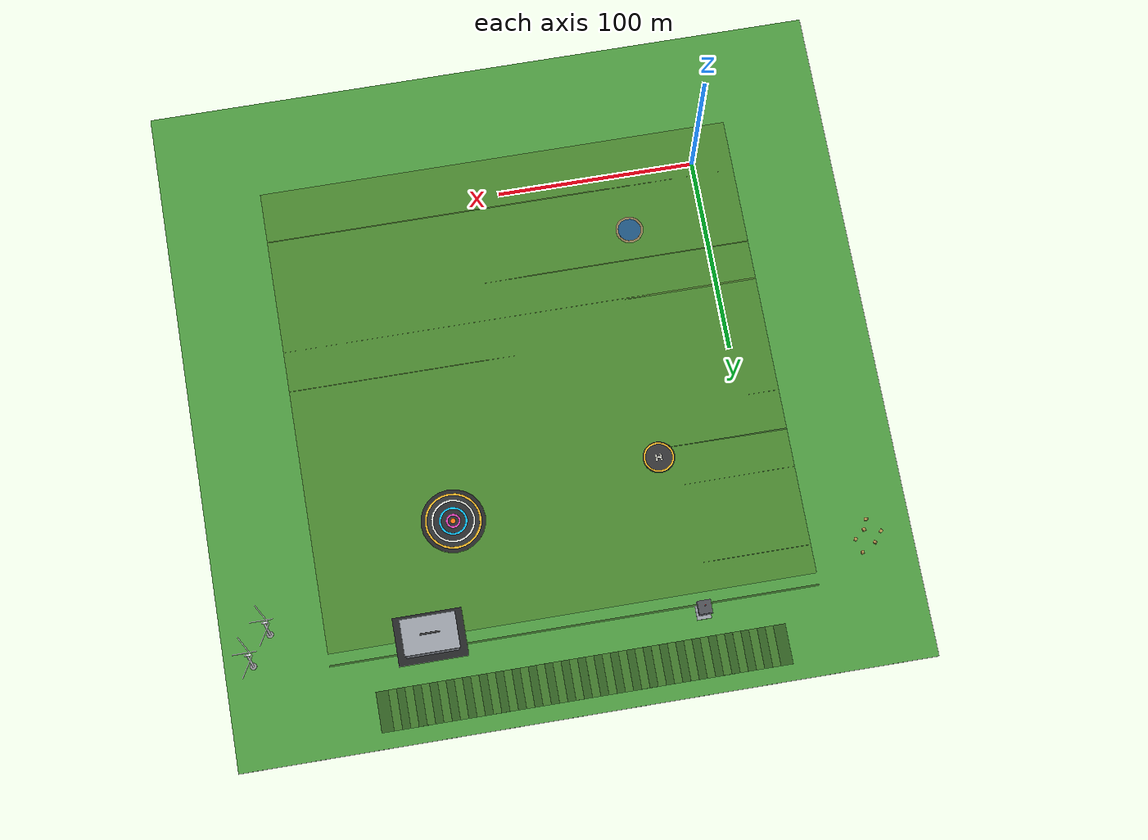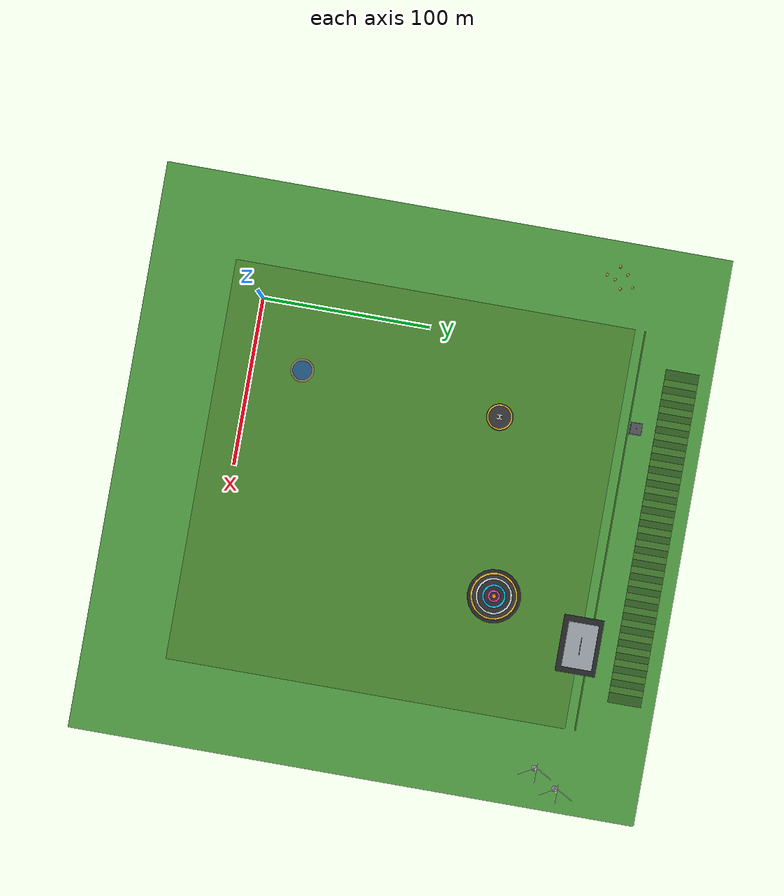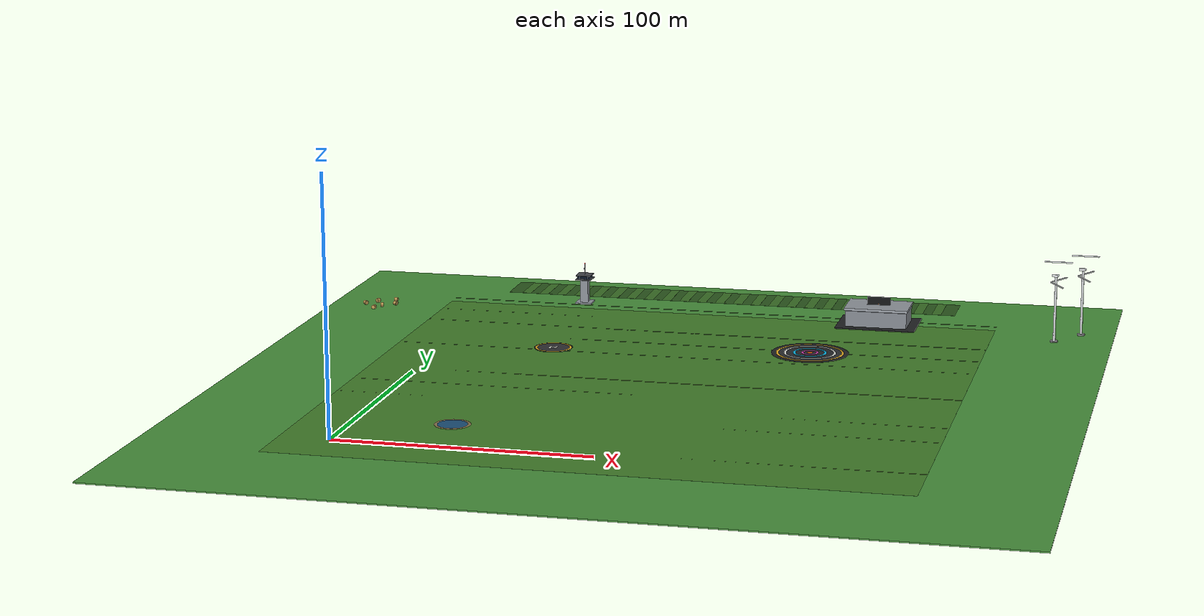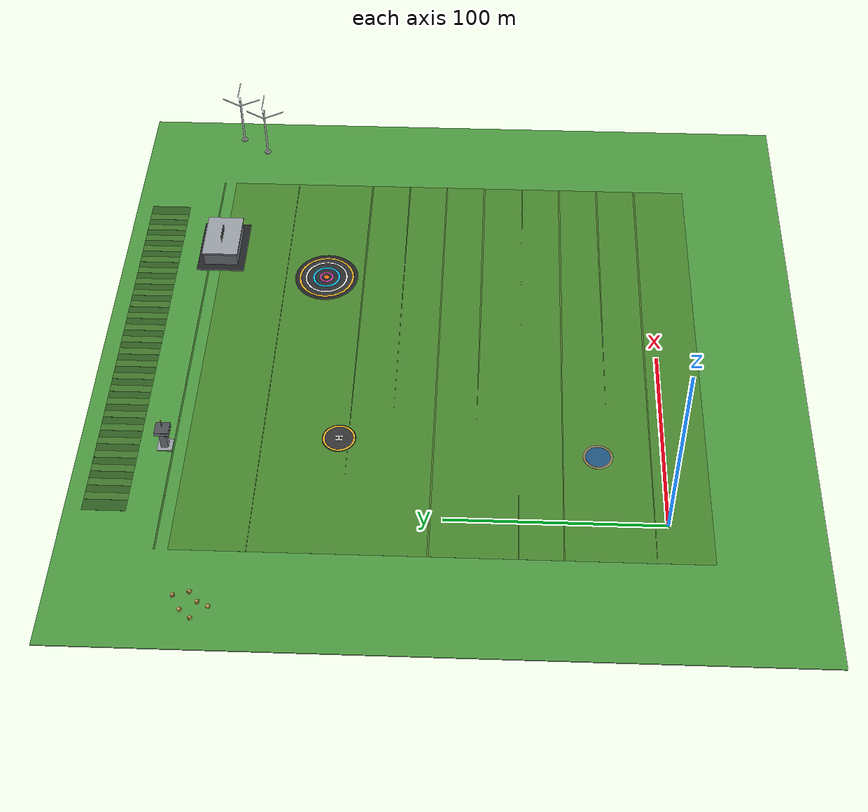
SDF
<sdf version="1.7">
 <world name="hiveflight_world">
  <include><uri>model://sun</uri><pose>80 120 180 0.35 -0.28 2.4</pose></include>
  <model name="terrain_grass">
   <static>true</static>
   <pose>100 100 -0.25 0 0 0</pose>
   <link name="ground">
    <collision name="collision"><geometry><box><size>340 340 0.5</size></box></geometry></collision>
    <visual name="visual">
     <geometry><box><size>340 340 0.5</size></box></geometry>
     <material>
      <script><uri>file://media/materials/scripts/gazebo.material</uri><name>Gazebo/Grass</name></script>
     </material>
    </visual>
   </link>
  </model>
  <model name="inner_lawn">
   <static>true</static>
   <pose>100 100 0.02 0 0 0</pose>
   <link name="lawn">
    <visual name="visual">
     <geometry><box><size>240 240 0.02</size></box></geometry>
     <material>
      <ambient>0.25 0.44 0.16 1</ambient>
      <diffuse>0.28 0.52 0.18 1</diffuse>
      <specular>0.03 0.03 0.03 1</specular>
     </material>
    </visual>
   </link>
  </model>
  <model name="lawn_stripes">
   <static>true</static>
   <pose>100 100 0.025 0 0 0</pose>
   <link name="stripes">
    <visual name="band_01">
     <pose>0 26 0 0 0 0</pose>
     <geometry><box><size>240 0.8 0.01</size></box></geometry>
     <material><diffuse>0.22 0.40 0.15 1</diffuse></material>
    </visual>
    <visual name="band_02">
     <pose>0 46 0 0 0 0</pose>
     <geometry><box><size>240 0.8 0.01</size></box></geometry>
     <material><diffuse>0.22 0.40 0.15 1</diffuse></material>
    </visual>
    <visual name="band_03">
     <pose>0 66 0 0 0 0</pose>
     <geometry><box><size>240 0.8 0.01</size></box></geometry>
     <material><diffuse>0.22 0.40 0.15 1</diffuse></material>
    </visual>
    <visual name="band_04">
     <pose>0 86 0 0 0 0</pose>
     <geometry><box><size>240 0.8 0.01</size></box></geometry>
     <material><diffuse>0.22 0.40 0.15 1</diffuse></material>
    </visual>
    <visual name="band_05">
     <pose>0 106 0 0 0 0</pose>
     <geometry><box><size>240 0.8 0.01</size></box></geometry>
     <material><diffuse>0.22 0.40 0.15 1</diffuse></material>
    </visual>
    <visual name="band_06">
     <pose>0 126 0 0 0 0</pose>
     <geometry><box><size>240 0.8 0.01</size></box></geometry>
     <material><diffuse>0.22 0.40 0.15 1</diffuse></material>
    </visual>
    <visual name="band_07">
     <pose>0 6 0 0 0 0</pose>
     <geometry><box><size>240 0.8 0.01</size></box></geometry>
     <material><diffuse>0.30 0.48 0.17 1</diffuse></material>
    </visual>
    <visual name="band_08">
     <pose>0 -14 0 0 0 0</pose>
     <geometry><box><size>240 0.8 0.01</size></box></geometry>
     <material><diffuse>0.30 0.48 0.17 1</diffuse></material>
    </visual>
    <visual name="band_09">
     <pose>0 -34 0 0 0 0</pose>
     <geometry><box><size>240 0.8 0.01</size></box></geometry>
     <material><diffuse>0.30 0.48 0.17 1</diffuse></material>
    </visual>
    <visual name="band_10">
     <pose>0 -54 0 0 0 0</pose>
     <geometry><box><size>240 0.8 0.01</size></box></geometry>
     <material><diffuse>0.30 0.48 0.17 1</diffuse></material>
    </visual>
    <visual name="band_11">
     <pose>0 -74 0 0 0 0</pose>
     <geometry><box><size>240 0.8 0.01</size></box></geometry>
     <material><diffuse>0.30 0.48 0.17 1</diffuse></material>
    </visual>
    <visual name="band_12">
     <pose>0 -94 0 0 0 0</pose>
     <geometry><box><size>240 0.8 0.01</size></box></geometry>
     <material><diffuse>0.30 0.48 0.17 1</diffuse></material>
    </visual>
   </link>
  </model>
  <model name="field_pond">
   <static>true</static>
   <pose>38 30 0 0 0 0</pose>
   <link name="pond">
    <visual name="shore">
     <pose>0 0 0.035 0 0 0</pose>
     <geometry><cylinder><radius>7.0</radius><length>0.07</length></cylinder></geometry>
     <material><diffuse>0.55 0.48 0.32 1</diffuse></material>
    </visual>
    <visual name="water">
     <pose>0 0 0.075 0 0 0</pose>
     <geometry><cylinder><radius>5.8</radius><length>0.05</length></cylinder></geometry>
     <material>
      <ambient>0.1 0.25 0.4 1</ambient>
      <diffuse>0.12 0.33 0.5 1</diffuse>
      <emissive>0.06 0.18 0.3 1</emissive>
      <transparency>0.25</transparency>
     </material>
    </visual>
   </link>
  </model>
  <model name="helipad">
   <static>true</static>
   <pose>45 150 0 0 0 0</pose>
   <link name="pad">
    <visual name="pad_base">
     <pose>0 0 0.045 0 0 0</pose>
     <geometry><cylinder><radius>8.0</radius><length>0.09</length></cylinder></geometry>
     <material><ambient>0.1 0.1 0.11 1</ambient><diffuse>0.13 0.135 0.14 1</diffuse></material>
    </visual>
    <visual name="ring_yellow">
     <pose>0 0 0.10 0 0 0</pose>
     <geometry><cylinder><radius>7.6</radius><length>0.02</length></cylinder></geometry>
     <material><diffuse>0.95 0.72 0.15 1</diffuse></material>
    </visual>
    <visual name="ring_center">
     <pose>0 0 0.115 0 0 0</pose>
     <geometry><cylinder><radius>6.7</radius><length>0.02</length></cylinder></geometry>
     <material><diffuse>0.2 0.2 0.21 1</diffuse></material>
    </visual>
    <visual name="h_bar_fl">
     <pose>-1.1 0 0.13 0 0 0</pose>
     <geometry><box><size>0.8 3.4 0.02</size></box></geometry>
     <material><diffuse>0.95 0.95 0.9 1</diffuse></material>
    </visual>
    <visual name="h_bar_fr">
     <pose>1.1 0 0.13 0 0 0</pose>
     <geometry><box><size>0.8 3.4 0.02</size></box></geometry>
     <material><diffuse>0.95 0.95 0.9 1</diffuse></material>
    </visual>
    <visual name="h_cross">
     <pose>0 0 0.13 0 0 0</pose>
     <geometry><box><size>2.6 0.8 0.02</size></box></geometry>
     <material><diffuse>0.95 0.95 0.9 1</diffuse></material>
    </visual>
    <visual name="h_cross_alt">
     <pose>0 0 0.133 0 0 0</pose>
     <geometry><box><size>2.6 0.8 0.02</size></box></geometry>
     <material><diffuse>0.95 0.95 0.9 1</diffuse></material>
    </visual>
   </link>
  </model>
  <model name="swarm_ops_disc">
   <static>true</static>
   <pose>150 165 0 0 0 0</pose>
   <link name="ops">
    <visual name="ops_base">
     <pose>0 0 0.04 0 0 0</pose>
     <geometry><cylinder><radius>16</radius><length>0.08</length></cylinder></geometry>
     <material><ambient>0.1 0.1 0.11 1</ambient><diffuse>0.14 0.145 0.15 1</diffuse></material>
    </visual>
    <visual name="ring_o_yellow">
     <pose>0 0 0.085 0 0 0</pose>
     <geometry><cylinder><radius>14</radius><length>0.02</length></cylinder></geometry>
     <material><diffuse>0.95 0.72 0.15 1</diffuse></material>
    </visual>
    <visual name="ring_o_inner">
     <pose>0 0 0.10 0 0 0</pose>
     <geometry><cylinder><radius>13.0</radius><length>0.02</length></cylinder></geometry>
     <material><diffuse>0.18 0.19 0.2 1</diffuse></material>
    </visual>
    <visual name="ring_w_white">
     <pose>0 0 0.115 0 0 0</pose>
     <geometry><cylinder><radius>10.8</radius><length>0.02</length></cylinder></geometry>
     <material><diffuse>0.92 0.93 0.9 1</diffuse></material>
    </visual>
    <visual name="ring_w_inner">
     <pose>0 0 0.13 0 0 0</pose>
     <geometry><cylinder><radius>9.9</radius><length>0.02</length></cylinder></geometry>
     <material><diffuse>0.16 0.17 0.18 1</diffuse></material>
    </visual>
    <visual name="ring_c_cyan">
     <pose>0 0 0.145 0 0 0</pose>
     <geometry><cylinder><radius>7.0</radius><length>0.02</length></cylinder></geometry>
     <material><diffuse>0.05 0.75 0.95 1</diffuse></material>
    </visual>
    <visual name="ring_c_inner">
     <pose>0 0 0.16 0 0 0</pose>
     <geometry><cylinder><radius>6.0</radius><length>0.02</length></cylinder></geometry>
     <material><diffuse>0.15 0.16 0.17 1</diffuse></material>
    </visual>
    <visual name="core_magenta">
     <pose>0 0 0.175 0 0 0</pose>
     <geometry><cylinder><radius>3.6</radius><length>0.02</length></cylinder></geometry>
     <material><diffuse>0.85 0.25 0.7 1</diffuse></material>
    </visual>
    <visual name="core_inner">
     <pose>0 0 0.19 0 0 0</pose>
     <geometry><cylinder><radius>2.6</radius><length>0.02</length></cylinder></geometry>
     <material><diffuse>0.16 0.17 0.18 1</diffuse></material>
    </visual>
    <visual name="core_target">
     <pose>0 0 0.205 0 0 0</pose>
     <geometry><cylinder><radius>1.3</radius><length>0.03</length></cylinder></geometry>
     <material>
      <ambient>1 0.4 0.05 1</ambient>
      <diffuse>1 0.45 0.06 1</diffuse>
      <emissive>1 0.35 0.05 1</emissive>
      <lighting>false</lighting>
     </material>
    </visual>
   </link>
  </model>
  <model name="control_tower">
   <static>true</static>
   <pose>38 230 0 0 0 0</pose>
   <link name="tower">
    <visual name="base">
     <pose>0 0 0.3 0 0 0</pose>
     <geometry><box><size>7 7 0.6</size></box></geometry>
     <material><ambient>0.55 0.57 0.6 1</ambient><diffuse>0.6 0.62 0.65 1</diffuse></material>
    </visual>
    <visual name="shaft">
     <pose>0 0 5.5 0 0 0</pose>
     <geometry><box><size>3.4 3.4 10</size></box></geometry>
     <material>
      <ambient>0.45 0.47 0.5 1</ambient>
      <diffuse>0.55 0.57 0.6 1</diffuse>
      <specular>0.15 0.15 0.15 1</specular>
     </material>
    </visual>
    <visual name="balcony">
     <pose>0 0 10.9 0 0 0</pose>
     <geometry><box><size>7 7 0.3</size></box></geometry>
     <material><diffuse>0.3 0.31 0.33 1</diffuse></material>
    </visual>
    <visual name="glass_front">
     <pose>0 -1.75 11.5 0 0 0</pose>
     <geometry><box><size>6 0.15 1.6</size></box></geometry>
     <material>
      <ambient>0.03 0.06 0.1 1</ambient>
      <diffuse>0.04 0.09 0.16 1</diffuse>
      <emissive>0.06 0.15 0.25 1</emissive>
      <specular>0.5 0.5 0.5 1</specular>
     </material>
    </visual>
    <visual name="glass_back">
     <pose>0 1.75 11.5 0 0 0</pose>
     <geometry><box><size>6 0.12 1.6</size></box></geometry>
     <material>
      <ambient>0.03 0.06 0.1 1</ambient>
      <diffuse>0.04 0.09 0.16 1</diffuse>
      <emissive>0.06 0.15 0.25 1</emissive>
     </material>
    </visual>
    <visual name="glass_left">
     <pose>1.75 0 11.5 0 0 0</pose>
     <geometry><box><size>0.12 6 1.6</size></box></geometry>
     <material>
      <ambient>0.03 0.06 0.1 1</ambient>
      <diffuse>0.04 0.09 0.16 1</diffuse>
      <emissive>0.06 0.15 0.25 1</emissive>
     </material>
    </visual>
    <visual name="glass_right">
     <pose>-1.75 0 11.5 0 0 0</pose>
     <geometry><box><size>0.12 6 1.6</size></box></geometry>
     <material>
      <ambient>0.03 0.06 0.1 1</ambient>
      <diffuse>0.04 0.09 0.16 1</diffuse>
      <emissive>0.06 0.15 0.25 1</emissive>
     </material>
    </visual>
    <visual name="roof">
     <pose>0 0 12.65 0 0 0</pose>
     <geometry><box><size>6.6 6.6 0.4</size></box></geometry>
     <material><diffuse>0.3 0.31 0.33 1</diffuse></material>
    </visual>
    <visual name="antenna_pole">
     <pose>0 0 15.4 0 0 0</pose>
     <geometry><cylinder><radius>0.05</radius><length>5</length></cylinder></geometry>
     <material><diffuse>0.5 0.52 0.55 1</diffuse></material>
    </visual>
    <visual name="antenna_rotator">
     <pose>0 0 15.3 0 0 0</pose>
     <geometry><box><size>0.5 0.5 0.6</size></box></geometry>
     <material><diffuse>0.3 0.31 0.33 1</diffuse></material>
    </visual>
    <visual name="tower_beacon">
     <pose>0 0 17.7 0 0 0</pose>
     <geometry><sphere><radius>0.28</radius></sphere></geometry>
     <material>
      <ambient>1 0.04 0.02 1</ambient>
      <diffuse>1 0.06 0.03 1</diffuse>
      <emissive>1 0.07 0.03 1</emissive>
     </material>
    </visual>
   </link>
  </model>
  <model name="hangar">
   <static>true</static>
   <pose>170 220 0 0 0 0</pose>
   <link name="hanger">
    <visual name="pad">
     <pose>0 0 0.25 0 0 0</pose>
     <geometry><box><size>34 24 0.5</size></box></geometry>
     <material><ambient>0.1 0.1 0.11 1</ambient><diffuse>0.14 0.145 0.15 1</diffuse></material>
    </visual>
    <visual name="walls">
     <pose>0 0 3.6 0 0 0</pose>
     <geometry><box><size>26 17 7.2</size></box></geometry>
     <material>
      <ambient>0.42 0.44 0.47 1</ambient>
      <diffuse>0.52 0.54 0.57 1</diffuse>
      <specular>0.1 0.1 0.1 1</specular>
     </material>
    </visual>
    <visual name="door">
     <pose>0 0 9 0 0 0</pose>
     <geometry><box><size>10 0.2 6</size></box></geometry>
     <material><ambient>0.06 0.065 0.07 1</ambient><diffuse>0.08 0.085 0.09 1</diffuse></material>
    </visual>
    <visual name="roof">
     <pose>0 0 8.0 0 0 0</pose>
     <geometry><box><size>27 18 1.0</size></box></geometry>
     <material><ambient>0.55 0.57 0.6 1</ambient><diffuse>0.6 0.62 0.65 1</diffuse></material>
    </visual>
    <visual name="roof_beacon">
     <pose>0 0 8.8 0 0 0</pose>
     <geometry><sphere><radius>0.25</radius></sphere></geometry>
     <material><ambient>0.95 0.4 0.05 1</ambient><emissive>1 0.5 0.1 1</emissive></material>
    </visual>
   </link>
  </model>
  <model name="field_crops_north">
   <static>true</static>
   <link name="rows">
    <visual name="crop_base">
     <pose>100 252 0.035 0 0 0</pose>
     <geometry><box><size>200 20 0.05</size></box></geometry>
     <material><ambient>0.14 0.28 0.095 1</ambient><diffuse>0.185 0.365 0.13 1</diffuse></material>
    </visual>
    <visual name="plant_01">
     <pose>8 252 0.075 0 0 0</pose>
     <geometry><box><size>4 20 0.03</size></box></geometry>
     <material><diffuse>0.245 0.46 0.165 1</diffuse></material>
    </visual>
    <visual name="plant_02">
     <pose>16 252 0.075 0 0 0</pose>
     <geometry><box><size>4 20 0.03</size></box></geometry>
     <material><diffuse>0.245 0.46 0.165 1</diffuse></material>
    </visual>
    <visual name="plant_03">
     <pose>24 252 0.075 0 0 0</pose>
     <geometry><box><size>4 20 0.03</size></box></geometry>
     <material><diffuse>0.245 0.46 0.165 1</diffuse></material>
    </visual>
    <visual name="plant_04">
     <pose>32 252 0.075 0 0 0</pose>
     <geometry><box><size>4 20 0.03</size></box></geometry>
     <material><diffuse>0.245 0.46 0.165 1</diffuse></material>
    </visual>
    <visual name="plant_05">
     <pose>40 252 0.075 0 0 0</pose>
     <geometry><box><size>4 20 0.03</size></box></geometry>
     <material><diffuse>0.245 0.46 0.165 1</diffuse></material>
    </visual>
    <visual name="plant_06">
     <pose>48 252 0.075 0 0 0</pose>
     <geometry><box><size>4 20 0.03</size></box></geometry>
     <material><diffuse>0.245 0.46 0.165 1</diffuse></material>
    </visual>
    <visual name="plant_07">
     <pose>56 252 0.075 0 0 0</pose>
     <geometry><box><size>4 20 0.03</size></box></geometry>
     <material><diffuse>0.245 0.46 0.165 1</diffuse></material>
    </visual>
    <visual name="plant_08">
     <pose>64 252 0.075 0 0 0</pose>
     <geometry><box><size>4 20 0.03</size></box></geometry>
     <material><diffuse>0.245 0.46 0.165 1</diffuse></material>
    </visual>
    <visual name="plant_09">
     <pose>72 252 0.075 0 0 0</pose>
     <geometry><box><size>4 20 0.03</size></box></geometry>
     <material><diffuse>0.245 0.46 0.165 1</diffuse></material>
    </visual>
    <visual name="plant_10">
     <pose>80 252 0.075 0 0 0</pose>
     <geometry><box><size>4 20 0.03</size></box></geometry>
     <material><diffuse>0.245 0.46 0.165 1</diffuse></material>
    </visual>
    <visual name="plant_11">
     <pose>88 252 0.075 0 0 0</pose>
     <geometry><box><size>4 20 0.03</size></box></geometry>
     <material><diffuse>0.245 0.46 0.165 1</diffuse></material>
    </visual>
    <visual name="plant_12">
     <pose>96 252 0.075 0 0 0</pose>
     <geometry><box><size>4 20 0.03</size></box></geometry>
     <material><diffuse>0.245 0.46 0.165 1</diffuse></material>
    </visual>
    <visual name="plant_13">
     <pose>104 252 0.075 0 0 0</pose>
     <geometry><box><size>4 20 0.03</size></box></geometry>
     <material><diffuse>0.245 0.46 0.165 1</diffuse></material>
    </visual>
    <visual name="plant_14">
     <pose>112 252 0.075 0 0 0</pose>
     <geometry><box><size>4 20 0.03</size></box></geometry>
     <material><diffuse>0.245 0.46 0.165 1</diffuse></material>
    </visual>
    <visual name="plant_15">
     <pose>120 252 0.075 0 0 0</pose>
     <geometry><box><size>4 20 0.03</size></box></geometry>
     <material><diffuse>0.245 0.46 0.165 1</diffuse></material>
    </visual>
    <visual name="plant_16">
     <pose>128 252 0.075 0 0 0</pose>
     <geometry><box><size>4 20 0.03</size></box></geometry>
     <material><diffuse>0.245 0.46 0.165 1</diffuse></material>
    </visual>
    <visual name="plant_17">
     <pose>136 252 0.075 0 0 0</pose>
     <geometry><box><size>4 20 0.03</size></box></geometry>
     <material><diffuse>0.245 0.46 0.165 1</diffuse></material>
    </visual>
    <visual name="plant_18">
     <pose>144 252 0.075 0 0 0</pose>
     <geometry><box><size>4 20 0.03</size></box></geometry>
     <material><diffuse>0.245 0.46 0.165 1</diffuse></material>
    </visual>
    <visual name="plant_19">
     <pose>152 252 0.075 0 0 0</pose>
     <geometry><box><size>4 20 0.03</size></box></geometry>
     <material><diffuse>0.245 0.46 0.165 1</diffuse></material>
    </visual>
    <visual name="plant_20">
     <pose>160 252 0.075 0 0 0</pose>
     <geometry><box><size>4 20 0.03</size></box></geometry>
     <material><diffuse>0.245 0.46 0.165 1</diffuse></material>
    </visual>
    <visual name="plant_21">
     <pose>168 252 0.075 0 0 0</pose>
     <geometry><box><size>4 20 0.03</size></box></geometry>
     <material><diffuse>0.245 0.46 0.165 1</diffuse></material>
    </visual>
    <visual name="plant_22">
     <pose>176 252 0.075 0 0 0</pose>
     <geometry><box><size>4 20 0.03</size></box></geometry>
     <material><diffuse>0.245 0.46 0.165 1</diffuse></material>
    </visual>
    <visual name="plant_23">
     <pose>184 252 0.075 0 0 0</pose>
     <geometry><box><size>4 20 0.03</size></box></geometry>
     <material><diffuse>0.245 0.46 0.165 1</diffuse></material>
    </visual>
    <visual name="plant_24">
     <pose>192 252 0.075 0 0 0</pose>
     <geometry><box><size>4 20 0.03</size></box></geometry>
     <material><diffuse>0.245 0.46 0.165 1</diffuse></material>
    </visual>
   </link>
  </model>
  <model name="hay_bales">
   <static>true</static>
   <link name="bale_1">
    <pose>-47 203 0.9 0 1.5708 0.3</pose>
    <visual name="b1">
     <geometry><cylinder><radius>0.9</radius><length>1.4</length></cylinder></geometry>
     <material><ambient>0.55 0.44 0.23 1</ambient><diffuse>0.73 0.59 0.31 1</diffuse></material>
    </visual>
   </link>
   <link name="bale_2">
    <pose>-42 207 0.9 0 1.5708 -0.5</pose>
    <visual name="b2">
     <geometry><cylinder><radius>0.9</radius><length>1.4</length></cylinder></geometry>
     <material><ambient>0.55 0.44 0.23 1</ambient><diffuse>0.73 0.59 0.31 1</diffuse></material>
    </visual>
   </link>
   <link name="bale_3">
    <pose>-51 210 0.9 0 1.5708 0.9</pose>
    <visual name="b3">
     <geometry><cylinder><radius>0.9</radius><length>1.4</length></cylinder></geometry>
     <material><ambient>0.55 0.44 0.23 1</ambient><diffuse>0.73 0.59 0.31 1</diffuse></material>
    </visual>
   </link>
   <link name="bale_4">
    <pose>-44 214 0.9 0 1.5708 0.1</pose>
    <visual name="b4">
     <geometry><cylinder><radius>0.9</radius><length>1.4</length></cylinder></geometry>
     <material><ambient>0.55 0.44 0.23 1</ambient><diffuse>0.73 0.59 0.31 1</diffuse></material>
    </visual>
   </link>
   <link name="bale_5">
    <pose>-55 205 0.9 0 1.5708 -0.8</pose>
    <visual name="b5">
     <geometry><cylinder><radius>0.9</radius><length>1.4</length></cylinder></geometry>
     <material><ambient>0.55 0.44 0.23 1</ambient><diffuse>0.73 0.59 0.31 1</diffuse></material>
    </visual>
   </link>
   <link name="bale_6">
    <pose>-49 198 0.9 0 1.5708 1.3</pose>
    <visual name="b6">
     <geometry><cylinder><radius>0.9</radius><length>1.4</length></cylinder></geometry>
     <material><ambient>0.55 0.44 0.23 1</ambient><diffuse>0.73 0.59 0.31 1</diffuse></material>
    </visual>
   </link>
  </model>
  <model name="wind_turbines">
   <static>true</static>
   <link name="turbine_1">
    <pose>246 206 0 0 0 0</pose>
    <visual name="foundation_1">
     <pose>0 0 0.25 0 0 0</pose>
     <geometry><cylinder><radius>1.7</radius><length>0.5</length></cylinder></geometry>
     <material><diffuse>0.55 0.55 0.56 1</diffuse></material>
    </visual>
    <visual name="tower_1">
     <pose>0 0 14.0 0 0 0</pose>
     <geometry><cylinder><radius>0.5</radius><length>27.5</length></cylinder></geometry>
     <material>
      <ambient>0.72 0.73 0.75 1</ambient>
      <diffuse>0.88 0.89 0.90 1</diffuse>
      <specular>0.4 0.4 0.4 1</specular>
     </material>
    </visual>
    <visual name="nacelle_1">
     <pose>-0.50 0 28.35 0 0 0</pose>
     <geometry><box><size>2.3 0.95 0.95</size></box></geometry>
     <material><ambient>0.72 0.73 0.75 1</ambient><diffuse>0.90 0.91 0.92 1</diffuse></material>
    </visual>
    <visual name="hub_1">
     <pose>0.85 0 28.35 0 0 0</pose>
     <geometry><sphere><radius>0.50</radius></sphere></geometry>
     <material><diffuse>0.85 0.86 0.87 1</diffuse></material>
    </visual>
    <visual name="blade_1a">
     <pose>0.85 0 34.10 0 0 1.5708</pose>
     <geometry><box><size>0.32 11.5 0.5</size></box></geometry>
     <material><ambient>0.78 0.79 0.81 1</ambient><diffuse>0.92 0.93 0.94 1</diffuse></material>
    </visual>
    <visual name="blade_1b">
     <pose>0.85 -4.98 25.48 0 0 3.6652</pose>
     <geometry><box><size>0.32 11.5 0.5</size></box></geometry>
     <material><ambient>0.78 0.79 0.81 1</ambient><diffuse>0.92 0.93 0.94 1</diffuse></material>
    </visual>
    <visual name="blade_1c">
     <pose>0.85 4.98 25.48 0 0 5.7596</pose>
     <geometry><box><size>0.32 11.5 0.5</size></box></geometry>
     <material><ambient>0.78 0.79 0.81 1</ambient><diffuse>0.92 0.93 0.94 1</diffuse></material>
    </visual>
   </link>
   <link name="turbine_2">
    <pose>256 220 0 0 0 0</pose>
    <visual name="foundation_2">
     <pose>0 0 0.25 0 0 0</pose>
     <geometry><cylinder><radius>1.7</radius><length>0.5</length></cylinder></geometry>
     <material><diffuse>0.55 0.55 0.56 1</diffuse></material>
    </visual>
    <visual name="tower_2">
     <pose>0 0 14.0 0 0 0</pose>
     <geometry><cylinder><radius>0.5</radius><length>27.5</length></cylinder></geometry>
     <material>
      <ambient>0.72 0.73 0.75 1</ambient>
      <diffuse>0.88 0.89 0.90 1</diffuse>
      <specular>0.4 0.4 0.4 1</specular>
     </material>
    </visual>
    <visual name="nacelle_2">
     <pose>-0.50 0 28.35 0 0 0</pose>
     <geometry><box><size>2.3 0.95 0.95</size></box></geometry>
     <material><ambient>0.72 0.73 0.75 1</ambient><diffuse>0.90 0.91 0.92 1</diffuse></material>
    </visual>
    <visual name="hub_2">
     <pose>0.85 0 28.35 0 0 0</pose>
     <geometry><sphere><radius>0.50</radius></sphere></geometry>
     <material><diffuse>0.85 0.86 0.87 1</diffuse></material>
    </visual>
    <visual name="blade_2a">
     <pose>0.85 0 34.10 0 0 1.5708</pose>
     <geometry><box><size>0.32 11.5 0.5</size></box></geometry>
     <material><ambient>0.78 0.79 0.81 1</ambient><diffuse>0.92 0.93 0.94 1</diffuse></material>
    </visual>
    <visual name="blade_2b">
     <pose>0.85 -4.98 25.48 0 0 3.6652</pose>
     <geometry><box><size>0.32 11.5 0.5</size></box></geometry>
     <material><ambient>0.78 0.79 0.81 1</ambient><diffuse>0.92 0.93 0.94 1</diffuse></material>
    </visual>
    <visual name="blade_2c">
     <pose>0.85 4.98 25.48 0 0 5.7596</pose>
     <geometry><box><size>0.32 11.5 0.5</size></box></geometry>
     <material><ambient>0.78 0.79 0.81 1</ambient><diffuse>0.92 0.93 0.94 1</diffuse></material>
    </visual>
   </link>
  </model>
 </world>
</sdf>
